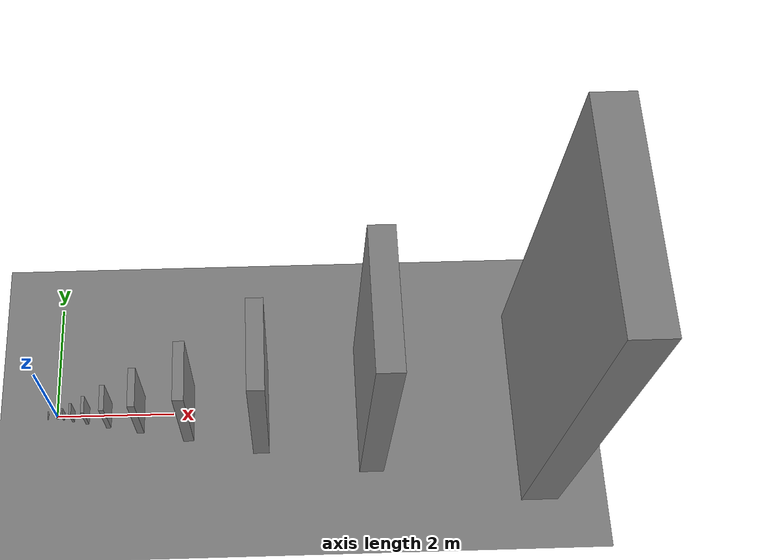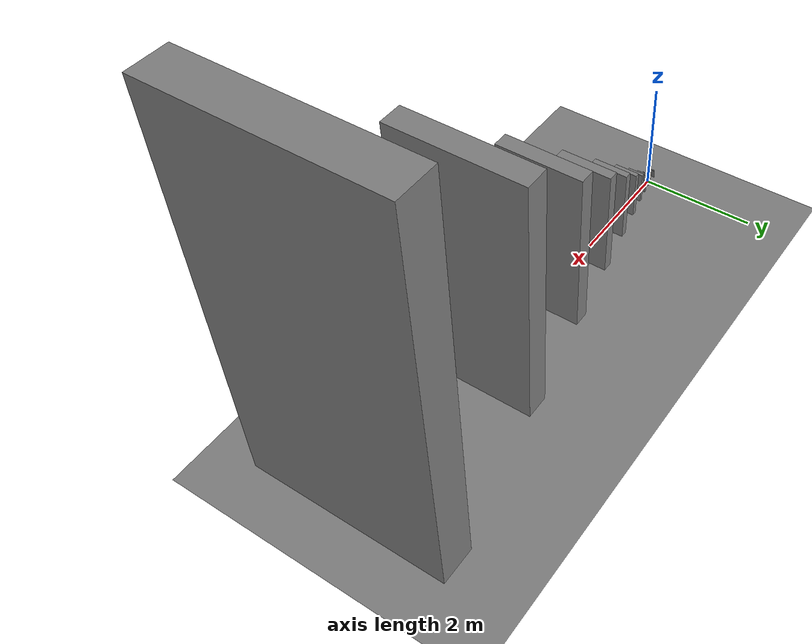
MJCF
<mujoco model="growing dominos">

  <option cone="elliptic" impratio="10" sleep_tolerance="3e-4">
    <flag sleep="enable"/>
  </option>

  <worldbody>
    <light pos="5 0 10" diffuse="1 1 1"/>
    <geom type="plane" size="20 20 .01" pos="5 0 1e-6"/>

    <!-- starter: tilted 10 deg, same size as domino 1 -->
    <body pos="-.15 0 .089" euler="0 10 0">
      <freejoint/>
      <geom type="box" size=".008 .044 .089" density="360"/>
    </body>

    <!-- domino 1: scale 1.0x, full height 0.178 m -->
    <body pos="0.0 0 .089">
      <freejoint/>
      <geom type="box" size=".008 .044 .089" density="360"/>
    </body>

    <!-- domino 2: scale 1.5x, full height 0.267 m, gap = 50% of domino 1 height -->
    <body pos="0.109 0 .134">
      <freejoint/>
      <geom type="box" size=".012 .066 .134" density="360"/>
    </body>

    <!-- domino 3: scale 2.25x, full height 0.400 m, gap = 50% of domino 2 height -->
    <body pos="0.273 0 .200">
      <freejoint/>
      <geom type="box" size=".018 .099 .200" density="360"/>
    </body>

    <!-- domino 4: scale 3.375x, full height 0.601 m, gap = 50% of domino 3 height -->
    <body pos="0.518 0 .300">
      <freejoint/>
      <geom type="box" size=".027 .149 .300" density="360"/>
    </body>

    <!-- domino 5: scale 5.06x, full height 0.901 m, gap = 50% of domino 4 height -->
    <body pos="0.886 0 .451">
      <freejoint/>
      <geom type="box" size=".041 .223 .451" density="360"/>
    </body>

    <!-- domino 6: scale 7.59x, full height 1.352 m, gap = 50% of domino 5 height -->
    <body pos="1.437 0 .676">
      <freejoint/>
      <geom type="box" size=".061 .334 .676" density="360"/>
    </body>

    <!-- domino 7: scale 11.4x, full height 2.028 m, gap = 50% of domino 6 height -->
    <body pos="2.265 0 1.014">
      <freejoint/>
      <geom type="box" size=".091 .501 1.014" density="360"/>
    </body>

    <!-- domino 8: scale 17.1x, full height 3.041 m, gap = 50% of domino 7 height -->
    <body pos="3.507 0 1.521">
      <freejoint/>
      <geom type="box" size=".137 .752 1.521" density="360"/>
    </body>

    <!-- domino 9: scale 25.6x, full height 4.562 m, gap = 50% of domino 8 height -->
    <body pos="5.369 0 2.281">
      <freejoint/>
      <geom type="box" size=".205 1.128 2.281" density="360"/>
    </body>

    <!-- domino 10: scale 38.4x, full height 6.843 m, gap = 50% of domino 9 height -->
    <body pos="8.163 0 3.422">
      <freejoint/>
      <geom type="box" size=".308 1.692 3.422" density="360"/>
    </body>

  </worldbody>

</mujoco>
